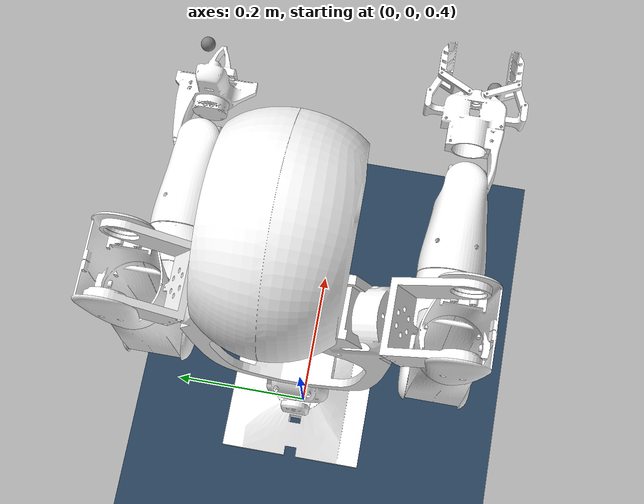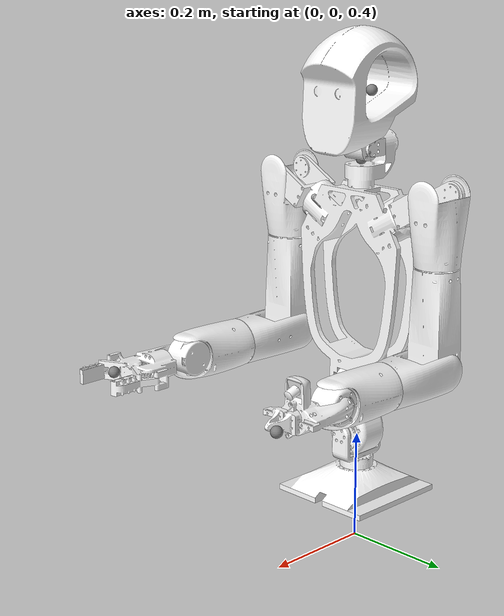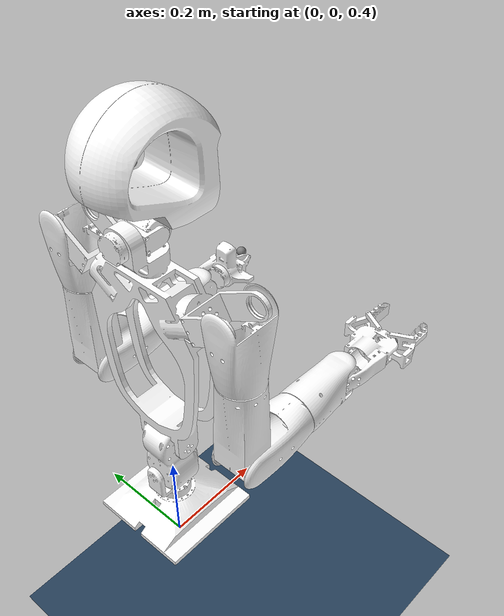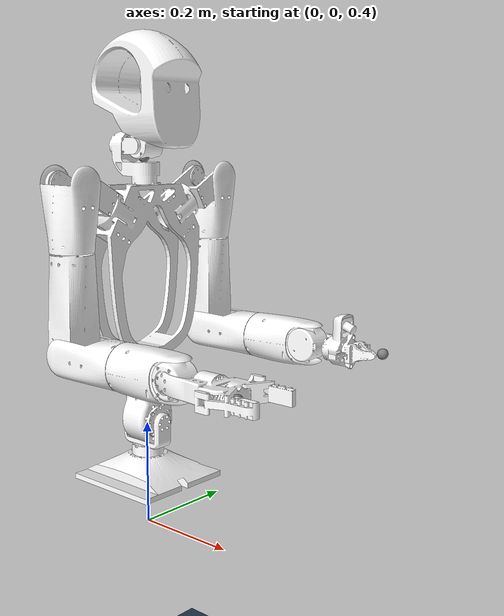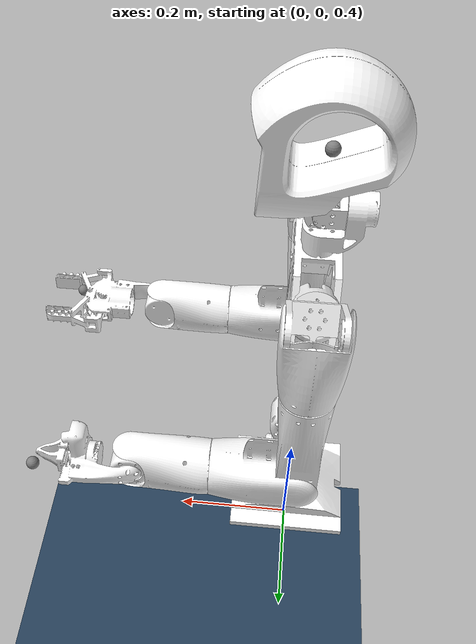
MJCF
<mujoco model="Semi_Taks_T1 scene clean">
  <include file="Semi_Taks_T1.xml"/>

  <statistic center="0 0 0.7" extent="1.5"/>

  <visual>
    <headlight diffuse="0.6 0.6 0.6" ambient="0.3 0.3 0.3" specular="0 0 0"/>
    <rgba haze="0.15 0.25 0.35 1"/>
    <global azimuth="-130" elevation="-20"/>
  </visual>

  <asset>
    <texture type="skybox" builtin="gradient" rgb1="0.3 0.5 0.7" rgb2="0 0 0" width="512" height="3072"/>
    <texture type="2d" name="groundplane" builtin="checker" mark="edge" rgb1="0.2 0.3 0.4" rgb2="0.1 0.2 0.3"
      markrgb="0.8 0.8 0.8" width="300" height="300"/>
    <material name="groundplane" texture="groundplane" texuniform="true" texrepeat="5 5" reflectance="0.2"/>
  </asset>

  <worldbody>
    <light pos="0 0 1.5" dir="0 0 -1" directional="true"/>
    <geom name="floor" size="0 0 0.05" type="plane" material="groundplane"/>
  </worldbody>

  <keyframe>
    <key name="home"
      qpos="
        0 0 0.5
        1 0 0 0
        0 0 0
        0 0.5 0 0.5 0 0 0
        0 -0.5 0 0.5 0 0 0
        0 0 0"/>
  </keyframe>
</mujoco>

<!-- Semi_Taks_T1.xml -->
<mujoco model="Semi_Taks_T1">
  <compiler angle="radian" meshdir="meshes" />

  <default>
    <default class="torso_motor">
      <joint damping="0.05" armature="0.01" frictionloss="0.2"/>
    </default>
    <default class="arm_motor">
      <joint damping="0.05" armature="0.01" frictionloss="0.2"/>
    </default>
    <default class="wrist_motor">
      <joint damping="0.05" armature="0.01" frictionloss="0.1"/>
    </default>
    <default class="neck_motor">
      <joint damping="0.02" armature="0.005" frictionloss="0.05"/>
    </default>
  </default>

  <asset>
    <mesh name="base_link" file="base_link.STL" />
    <mesh name="waist_yaw_link" file="waist_yaw_link.STL" />
    <mesh name="waist_roll_link" file="waist_roll_link.STL" />
    <mesh name="waist_pitch_link" file="waist_pitch_link.STL" />
    <mesh name="left_shoulder_pitch_link" file="left_shoulder_pitch_link.STL" />
    <mesh name="left_shoulder_roll_link" file="left_shoulder_roll_link.STL" />
    <mesh name="left_shoulder_yaw_link" file="left_shoulder_yaw_link.STL" />
    <mesh name="left_elbow_link" file="left_elbow_link.STL" />
    <mesh name="left_wrist_roll_link" file="left_wrist_roll_link.STL" />
    <mesh name="left_wrist_yaw_link" file="left_wrist_yaw_link.STL" />
    <mesh name="left_wrist_pitch_link" file="left_wrist_pitch_link.STL" />
    <mesh name="right_shoulder_pitch_link" file="right_shoulder_pitch_link.STL" />
    <mesh name="right_shoulder_roll_link" file="right_shoulder_roll_link.STL" />
    <mesh name="right_shoulder_yaw_link" file="right_shoulder_yaw_link.STL" />
    <mesh name="right_elbow_link" file="right_elbow_link.STL" />
    <mesh name="right_wrist_roll_link" file="right_wrist_roll_link.STL" />
    <mesh name="right_wrist_yaw_link" file="right_wrist_yaw_link.STL" />
    <mesh name="right_wrist_pitch_link" file="right_wrist_pitch_link.STL" />
    <mesh name="neck_yaw_link" file="neck_yaw_link.STL" />
    <mesh name="neck_roll_link" file="neck_roll_link.STL" />
    <mesh name="neck_pitch_link" file="neck_pitch_link.STL" />
  </asset>

  <worldbody>
    <body name="base_link" pos="0 0 0.5">
      <site name="imu" size="0.01" pos="0.0 0.0 0.0" />
      <inertial pos="0.0 0.0 0.0" mass="3.2"
        diaginertia="0.0111333 0.013026 0.0161433" />
      <joint name="floating_base_joint" type="free" limited="false" actuatorfrclimited="false" />
      <geom type="mesh" contype="0" conaffinity="0" group="1" density="0" rgba="1.0 1.0 1.0 1"
        mesh="base_link" />
      <geom type="mesh" rgba="1.0 1.0 1.0 1" mesh="base_link" contype="2" conaffinity="1" />

      <!-- Upper Body -->
      <body name="waist_yaw_link" pos="0.0 0.0 0.058">
        <inertial pos="0.000694 3.7e-05 0.023535" mass="0.79"
          diaginertia="0.00073075 0.00073075 0.0009875" />
        <joint name="waist_yaw_joint" pos="0 0 0" axis="0 0 1" range="-2.618 2.618"
          actuatorfrcrange="-97 97" class="torso_motor" />
        <geom type="mesh" contype="0" conaffinity="0" group="1" density="0" rgba="1.0 1.0 1.0 1"
          mesh="waist_yaw_link" />
        <geom type="mesh" rgba="1.0 1.0 1.0 1" mesh="waist_yaw_link" contype="2" conaffinity="1" />

        <body name="waist_roll_link" pos="0.03813 3.7e-05 0.050906">
          <inertial pos="-0.03647 0.001918 0.039525" mass="1.56"
            diaginertia="0.003848 0.003848 0.0026" />
          <joint name="waist_roll_joint" pos="0 0 0" axis="1 0 0" range="-0.52 0.52"
            actuatorfrcrange="-97 97" class="torso_motor" />
          <geom type="mesh" contype="0" conaffinity="0" group="1" density="0" rgba="1.0 1.0 1.0 1"
            mesh="waist_roll_link" />
          <geom type="mesh" rgba="1.0 1.0 1.0 1" mesh="waist_roll_link" contype="2" conaffinity="1" />

          <body name="torso_link" pos="-0.03813 -0.032925 0.079963">
            <inertial pos="-0.000232 0.028443 0.216034" mass="2.01"
              diaginertia="0.0272187 0.0242875 0.0104687" />
            <joint name="waist_pitch_joint" pos="0 0 0" axis="0 1 0" range="-0.52 0.52"
              actuatorfrcrange="-97 97" class="torso_motor" />
            <geom type="mesh" contype="0" conaffinity="0" group="1" density="0" rgba="1.0 1.0 1.0 1"
              mesh="waist_pitch_link" />
            <geom type="mesh" rgba="1.0 1.0 1.0 1" mesh="waist_pitch_link" contype="2" conaffinity="1" />

            <!-- Left Arm -->
            <body name="left_shoulder_pitch_link" pos="0.0 0.13582 0.33654"
              quat="0.9659258 0.2588190 0 0">
              <inertial pos="-0.003513 0.038593 0.000147" mass="0.24"
                diaginertia="0.00016 8.2e-05 0.000178" />
              <joint name="left_shoulder_pitch_joint" pos="0 0 0" axis="0 1 0"
                range="-2.0 2.0" actuatorfrcrange="-27 27" class="arm_motor" />
              <geom type="mesh" contype="0" conaffinity="0" group="1" density="0" rgba="1.0 1.0 1.0 1"
                mesh="left_shoulder_pitch_link" />
              <geom type="mesh" rgba="1.0 1.0 1.0 1" mesh="left_shoulder_pitch_link" />

              <body name="left_shoulder_roll_link" pos="0.03476 0.0835 0.000425"
                quat="0.9659258 -0.2588190 0 0">
                <inertial pos="-0.034364 0.004091 -0.054537" mass="0.92"
                  diaginertia="0.00187067 0.00187067 0.000736" />
                <joint name="left_shoulder_roll_joint" pos="0 0 0" axis="1 0 0"
                  range="-0.2 2.2515" actuatorfrcrange="-27 27" class="arm_motor" />
                <geom type="mesh" contype="0" conaffinity="0" group="1" density="0" rgba="1.0 1.0 1.0 1"
                  mesh="left_shoulder_roll_link" />
                <geom type="mesh" rgba="1.0 1.0 1.0 1" mesh="left_shoulder_roll_link" />

                <body name="left_shoulder_yaw_link" pos="-0.034375 0.0 -0.12">
                  <inertial pos="0.000365 -7.2e-05 -0.086229" mass="0.625"
                    diaginertia="0.0019375 0.0019375 0.0005" />
                  <joint name="left_shoulder_yaw_joint" pos="0 0 0" axis="0 0 1"
                    range="-2.58 2.58" actuatorfrcrange="-27 27" class="arm_motor" />
                  <geom type="mesh" contype="0" conaffinity="0" group="1" density="0" rgba="1.0 1.0 1.0 1"
                    mesh="left_shoulder_yaw_link" />
                  <geom type="mesh" rgba="1.0 1.0 1.0 1" mesh="left_shoulder_yaw_link" contype="8" conaffinity="1" />

                  <body name="left_elbow_link" pos="0.000364 0.029113 -0.18099">
                    <inertial pos="0.060258 -0.018902 -0.00551" mass="0.552"
                      diaginertia="0.0002484 0.0010258 0.0010258" />
                    <joint name="left_elbow_joint" pos="0 0 0" axis="0 1 0"
                      range="-0.7 1.57" actuatorfrcrange="-27 27" class="arm_motor" />
                    <geom type="mesh" contype="0" conaffinity="0" group="1" density="0" rgba="1.0 1.0 1.0 1"
                      mesh="left_elbow_link" />
                    <geom type="mesh" rgba="1.0 1.0 1.0 1" mesh="left_elbow_link" contype="8" conaffinity="1" />

                    <body name="left_wrist_roll_link" pos="0.13 -0.029125 0.0">
                      <inertial pos="0.059349 0.0 0.000843" mass="0.508"
                        diaginertia="0.00015875 0.000794808 0.000794808" />
                      <joint name="left_wrist_roll_joint" pos="0 0 0" axis="1 0 0"
                        range="-2.67 2.67" actuatorfrcrange="-7 7" class="wrist_motor" />
                      <geom type="mesh" contype="0" conaffinity="0" group="1" density="0" rgba="1.0 1.0 1.0 1"
                        mesh="left_wrist_roll_link" />
                      <geom type="mesh" rgba="1.0 1.0 1.0 1" mesh="left_wrist_roll_link" contype="8" conaffinity="1" />

                      <body name="left_wrist_yaw_link" pos="0.121 0.0 -0.0333">
                        <inertial pos="0.0 0.001805 0.034219" mass="0.37"
                          diaginertia="0.000234333 0.000234333 0.0001665" />
                        <joint name="left_wrist_yaw_joint" pos="0 0 0" axis="0 0 1"
                          range="-0.9 0.9" actuatorfrcrange="-7 7" class="wrist_motor" />
                        <geom type="mesh" contype="0" conaffinity="0" group="1" density="0" rgba="1.0 1.0 1.0 1"
                          mesh="left_wrist_yaw_link" />
                        <geom type="mesh" rgba="1.0 1.0 1.0 1" mesh="left_wrist_yaw_link" contype="8" conaffinity="1" />

                        <body name="left_wrist_pitch_link" pos="0.0 0.0225 0.0333">
                          <inertial pos="0.0920 -0.0265 0.0015" mass="0.308"
                            diaginertia="0.000256667 0.00133467 0.00140653"/>
                          <joint name="left_wrist_pitch_joint" pos="0 0 0" axis="0 1 0"
                            range="-0.9 0.9" actuatorfrcrange="-7 7" class="wrist_motor" />
                          <geom type="mesh" contype="0" conaffinity="0" group="1" density="0" rgba="1.0 1.0 1.0 1"
                            mesh="left_wrist_pitch_link" />
                          <geom type="mesh" rgba="1.0 1.0 1.0 1" mesh="left_wrist_pitch_link" contype="8" conaffinity="1" />
                          <site name="left_hand" size="0.01" pos="0.15 0 0" />
                        </body>
                      </body>
                    </body>
                  </body>
                </body>
              </body>
            </body>

            <!-- Right Arm -->
            <body name="right_shoulder_pitch_link" pos="0.0 -0.069974 0.33654"
              quat="0.9659258 -0.2588190 0 0">
              <inertial pos="-0.003513 -0.038593 0.000147" mass="0.24"
                diaginertia="0.00016 8.2e-05 0.000178" />
              <joint name="right_shoulder_pitch_joint" pos="0 0 0" axis="0 1 0"
                range="-2.0 2.0" actuatorfrcrange="-27 27" class="arm_motor" />
              <geom type="mesh" contype="0" conaffinity="0" group="1" density="0" rgba="1.0 1.0 1.0 1"
                mesh="right_shoulder_pitch_link" />
              <geom type="mesh" rgba="1.0 1.0 1.0 1" mesh="right_shoulder_pitch_link" />

              <body name="right_shoulder_roll_link" pos="0.02776 -0.0835 0.000425"
                quat="0.9659258 0.2588190 0 0">
                <inertial pos="-0.027363 -0.004095 -0.054537" mass="0.92"
                  diaginertia="0.00187067 0.00187067 0.000736" />
                <joint name="right_shoulder_roll_joint" pos="0 0 0" axis="1 0 0"
                  range="-2.2515 0.2" actuatorfrcrange="-27 27" class="arm_motor" />
                <geom type="mesh" contype="0" conaffinity="0" group="1" density="0" rgba="1.0 1.0 1.0 1"
                  mesh="right_shoulder_roll_link" />
                <geom type="mesh" rgba="1.0 1.0 1.0 1" mesh="right_shoulder_roll_link" />

                <body name="right_shoulder_yaw_link" pos="-0.027375 0.0 -0.12">
                  <inertial pos="0.000364 6.6e-05 -0.08623" mass="0.625"
                    diaginertia="0.0019375 0.0019375 0.0005" />
                  <joint name="right_shoulder_yaw_joint" pos="0 0 0" axis="0 0 1"
                    range="-2.58 2.58" actuatorfrcrange="-27 27" class="arm_motor" />
                  <geom type="mesh" contype="0" conaffinity="0" group="1" density="0" rgba="1.0 1.0 1.0 1"
                    mesh="right_shoulder_yaw_link" />
                  <geom type="mesh" rgba="1.0 1.0 1.0 1" mesh="right_shoulder_yaw_link" contype="16" conaffinity="1" />

                  <body name="right_elbow_link" pos="0.000364 0.027375 -0.18099">
                    <inertial pos="0.060603 -0.027325 -0.005367" mass="0.552"
                      diaginertia="0.0002484 0.0010258 0.0010258" />
                    <joint name="right_elbow_joint" pos="0 0 0" axis="0 1 0"
                      range="-0.7 1.57" actuatorfrcrange="-27 27" class="arm_motor" />
                    <geom type="mesh" contype="0" conaffinity="0" group="1" density="0" rgba="1.0 1.0 1.0 1"
                      mesh="right_elbow_link" />
                    <geom type="mesh" rgba="1.0 1.0 1.0 1" mesh="right_elbow_link" contype="16" conaffinity="1" />

                    <body name="right_wrist_roll_link" pos="0.13 -0.027375 0.0">
                      <inertial pos="0.059331 0.0 0.000847" mass="0.508"
                        diaginertia="0.00015875 0.000794808 0.000794808" />
                      <joint name="right_wrist_roll_joint" pos="0 0 0" axis="1 0 0"
                        range="-2.67 2.67" actuatorfrcrange="-7 7" class="wrist_motor" />
                      <geom type="mesh" contype="0" conaffinity="0" group="1" density="0" rgba="1.0 1.0 1.0 1"
                        mesh="right_wrist_roll_link" />
                      <geom type="mesh" rgba="1.0 1.0 1.0 1" mesh="right_wrist_roll_link" contype="16" conaffinity="1" />

                      <body name="right_wrist_yaw_link" pos="0.121 0.0 -0.0333">
                        <inertial pos="0.0 -0.001803 0.034219" mass="0.37"
                          diaginertia="0.000234333 0.000234333 0.0001665" />
                        <joint name="right_wrist_yaw_joint" pos="0 0 0" axis="0 0 1"
                          range="-0.9 0.9" actuatorfrcrange="-7 7" class="wrist_motor" />
                        <geom type="mesh" contype="0" conaffinity="0" group="1" density="0" rgba="1.0 1.0 1.0 1"
                          mesh="right_wrist_yaw_link" />
                        <geom type="mesh" rgba="1.0 1.0 1.0 1" mesh="right_wrist_yaw_link" contype="16" conaffinity="1" />

                        <body name="right_wrist_pitch_link" pos="0.0 -0.0225 0.0333">
                          <inertial pos="0.0920 0.0265 0.0015" mass="0.308"
                            diaginertia="0.000256667 0.00133467 0.00140653"/>
                          <joint name="right_wrist_pitch_joint" pos="0 0 0" axis="0 1 0"
                            range="-0.9 0.9" actuatorfrcrange="-7 7" class="wrist_motor" />
                          <geom type="mesh" contype="0" conaffinity="0" group="1" density="0" rgba="1.0 1.0 1.0 1"
                            mesh="right_wrist_pitch_link" />
                          <geom type="mesh" rgba="1.0 1.0 1.0 1" mesh="right_wrist_pitch_link" contype="16" conaffinity="1" />
                          <site name="right_hand" size="0.01" pos="0.15 0 0" />
                        </body>
                      </body>
                    </body>
                  </body>
                </body>
              </body>
            </body>

            <!-- Neck -->
            <body name="neck_yaw_link" pos="0.0 0.032906 0.37165" quat="1 3.2e-05 0 0">
              <inertial pos="-0.026005 0.0 0.044508" mass="0.4"
                diaginertia="0.000373333 0.000373333 0.00032" />
              <joint name="neck_yaw_joint" pos="0 0 0" axis="0 0 1" range="-1.57 1.57"
                actuatorfrcrange="-3 3" class="neck_motor" />
              <geom type="mesh" contype="0" conaffinity="0" group="1" density="0" rgba="1.0 1.0 1.0 1"
                mesh="neck_yaw_link" />
              <geom type="mesh" rgba="1.0 1.0 1.0 1" mesh="neck_yaw_link" contype="4" conaffinity="1" />
              <site name="neck_yaw" size="0.01" pos="0 0 0.05" />

              <body name="neck_roll_link" pos="-0.0719 0.0 0.0708">
                <inertial pos="0.05706 -0.000635 0.0" mass="0.026"
                  diaginertia="4.16e-06 4.16e-06 4.16e-06" />
                <joint name="neck_roll_joint" pos="0 0 0" axis="1 0 0" range="-0.873 0.873"
                  actuatorfrcrange="-3 3" class="neck_motor" />
                <geom type="mesh" contype="0" conaffinity="0" group="1" density="0" rgba="1.0 1.0 1.0 1"
                  mesh="neck_roll_link" />
                <geom type="mesh" rgba="1.0 1.0 1.0 1" mesh="neck_roll_link" contype="4" conaffinity="1" />

                <body name="neck_pitch_link" pos="0.0719 0.02095 0.0">
                  <inertial pos="0.009314 -0.020599 0.085269" mass="0.6"
                    diaginertia="0.001944 0.001944 0.001944" />
                  <joint name="neck_pitch_joint" pos="0 0 0" axis="0 1 0" range="-0.873 0.873"
                    actuatorfrcrange="-3 3" class="neck_motor" />
                  <geom type="mesh" contype="0" conaffinity="0" group="1" density="0" rgba="1.0 1.0 1.0 1"
                    mesh="neck_pitch_link" />
                  <geom type="mesh" rgba="1.0 1.0 1.0 1" mesh="neck_pitch_link" contype="4" conaffinity="1" />
                  <site name="neck_pitch" size="0.01" pos="0 0 0.1" />
                </body>
              </body>
            </body>
          </body>
        </body>
      </body>
    </body>
  </worldbody>

  <!-- Actuators (17 DOF) -->
  <actuator>
    <!-- Waist -->
    <motor name="waist_yaw" joint="waist_yaw_joint" ctrlrange="-97 97" />
    <motor name="waist_roll" joint="waist_roll_joint" ctrlrange="-97 97" />
    <motor name="waist_pitch" joint="waist_pitch_joint" ctrlrange="-97 97" />
    <!-- Left Arm -->
    <motor name="left_shoulder_pitch" joint="left_shoulder_pitch_joint" ctrlrange="-27 27" />
    <motor name="left_shoulder_roll" joint="left_shoulder_roll_joint" ctrlrange="-27 27" />
    <motor name="left_shoulder_yaw" joint="left_shoulder_yaw_joint" ctrlrange="-27 27" />
    <motor name="left_elbow" joint="left_elbow_joint" ctrlrange="-27 27" />
    <motor name="left_wrist_roll" joint="left_wrist_roll_joint" ctrlrange="-7 7" />
    <motor name="left_wrist_yaw" joint="left_wrist_yaw_joint" ctrlrange="-7 7" />
    <motor name="left_wrist_pitch" joint="left_wrist_pitch_joint" ctrlrange="-7 7" />
    <!-- Right Arm -->
    <motor name="right_shoulder_pitch" joint="right_shoulder_pitch_joint" ctrlrange="-27 27" />
    <motor name="right_shoulder_roll" joint="right_shoulder_roll_joint" ctrlrange="-27 27" />
    <motor name="right_shoulder_yaw" joint="right_shoulder_yaw_joint" ctrlrange="-27 27" />
    <motor name="right_elbow" joint="right_elbow_joint" ctrlrange="-27 27" />
    <motor name="right_wrist_roll" joint="right_wrist_roll_joint" ctrlrange="-7 7" />
    <motor name="right_wrist_yaw" joint="right_wrist_yaw_joint" ctrlrange="-7 7" />
    <motor name="right_wrist_pitch" joint="right_wrist_pitch_joint" ctrlrange="-7 7" />
    <!-- Neck -->
    <motor name="neck_yaw" joint="neck_yaw_joint" ctrlrange="-3 3" />
    <motor name="neck_roll" joint="neck_roll_joint" ctrlrange="-3 3" />
    <motor name="neck_pitch" joint="neck_pitch_joint" ctrlrange="-3 3" />
  </actuator>

  <!-- Sensors -->
  <sensor>
    <!-- Joint positions -->
    <jointpos name="waist_yaw_pos" joint="waist_yaw_joint" />
    <jointpos name="waist_roll_pos" joint="waist_roll_joint" />
    <jointpos name="waist_pitch_pos" joint="waist_pitch_joint" />
    <jointpos name="left_shoulder_pitch_pos" joint="left_shoulder_pitch_joint" />
    <jointpos name="left_shoulder_roll_pos" joint="left_shoulder_roll_joint" />
    <jointpos name="left_shoulder_yaw_pos" joint="left_shoulder_yaw_joint" />
    <jointpos name="left_elbow_pos" joint="left_elbow_joint" />
    <jointpos name="left_wrist_roll_pos" joint="left_wrist_roll_joint" />
    <jointpos name="left_wrist_yaw_pos" joint="left_wrist_yaw_joint" />
    <jointpos name="left_wrist_pitch_pos" joint="left_wrist_pitch_joint" />
    <jointpos name="right_shoulder_pitch_pos" joint="right_shoulder_pitch_joint" />
    <jointpos name="right_shoulder_roll_pos" joint="right_shoulder_roll_joint" />
    <jointpos name="right_shoulder_yaw_pos" joint="right_shoulder_yaw_joint" />
    <jointpos name="right_elbow_pos" joint="right_elbow_joint" />
    <jointpos name="right_wrist_roll_pos" joint="right_wrist_roll_joint" />
    <jointpos name="right_wrist_yaw_pos" joint="right_wrist_yaw_joint" />
    <jointpos name="right_wrist_pitch_pos" joint="right_wrist_pitch_joint" />
    <jointpos name="neck_yaw_pos" joint="neck_yaw_joint" />
    <jointpos name="neck_roll_pos" joint="neck_roll_joint" />
    <jointpos name="neck_pitch_pos" joint="neck_pitch_joint" />

    <!-- Joint velocities -->
    <jointvel name="waist_yaw_vel" joint="waist_yaw_joint" />
    <jointvel name="waist_roll_vel" joint="waist_roll_joint" />
    <jointvel name="waist_pitch_vel" joint="waist_pitch_joint" />
    <jointvel name="left_shoulder_pitch_vel" joint="left_shoulder_pitch_joint" />
    <jointvel name="left_shoulder_roll_vel" joint="left_shoulder_roll_joint" />
    <jointvel name="left_shoulder_yaw_vel" joint="left_shoulder_yaw_joint" />
    <jointvel name="left_elbow_vel" joint="left_elbow_joint" />
    <jointvel name="left_wrist_roll_vel" joint="left_wrist_roll_joint" />
    <jointvel name="left_wrist_yaw_vel" joint="left_wrist_yaw_joint" />
    <jointvel name="left_wrist_pitch_vel" joint="left_wrist_pitch_joint" />
    <jointvel name="right_shoulder_pitch_vel" joint="right_shoulder_pitch_joint" />
    <jointvel name="right_shoulder_roll_vel" joint="right_shoulder_roll_joint" />
    <jointvel name="right_shoulder_yaw_vel" joint="right_shoulder_yaw_joint" />
    <jointvel name="right_elbow_vel" joint="right_elbow_joint" />
    <jointvel name="right_wrist_roll_vel" joint="right_wrist_roll_joint" />
    <jointvel name="right_wrist_yaw_vel" joint="right_wrist_yaw_joint" />
    <jointvel name="right_wrist_pitch_vel" joint="right_wrist_pitch_joint" />
    <jointvel name="neck_yaw_vel" joint="neck_yaw_joint" />
    <jointvel name="neck_roll_vel" joint="neck_roll_joint" />
    <jointvel name="neck_pitch_vel" joint="neck_pitch_joint" />

    <!-- Joint actuator forces -->
    <jointactuatorfrc name="waist_yaw_torque" joint="waist_yaw_joint" />
    <jointactuatorfrc name="waist_roll_torque" joint="waist_roll_joint" />
    <jointactuatorfrc name="waist_pitch_torque" joint="waist_pitch_joint" />
    <jointactuatorfrc name="left_shoulder_pitch_torque" joint="left_shoulder_pitch_joint" />
    <jointactuatorfrc name="left_shoulder_roll_torque" joint="left_shoulder_roll_joint" />
    <jointactuatorfrc name="left_shoulder_yaw_torque" joint="left_shoulder_yaw_joint" />
    <jointactuatorfrc name="left_elbow_torque" joint="left_elbow_joint" />
    <jointactuatorfrc name="left_wrist_roll_torque" joint="left_wrist_roll_joint" />
    <jointactuatorfrc name="left_wrist_yaw_torque" joint="left_wrist_yaw_joint" />
    <jointactuatorfrc name="left_wrist_pitch_torque" joint="left_wrist_pitch_joint" />
    <jointactuatorfrc name="right_shoulder_pitch_torque" joint="right_shoulder_pitch_joint" />
    <jointactuatorfrc name="right_shoulder_roll_torque" joint="right_shoulder_roll_joint" />
    <jointactuatorfrc name="right_shoulder_yaw_torque" joint="right_shoulder_yaw_joint" />
    <jointactuatorfrc name="right_elbow_torque" joint="right_elbow_joint" />
    <jointactuatorfrc name="right_wrist_roll_torque" joint="right_wrist_roll_joint" />
    <jointactuatorfrc name="right_wrist_yaw_torque" joint="right_wrist_yaw_joint" />
    <jointactuatorfrc name="right_wrist_pitch_torque" joint="right_wrist_pitch_joint" />
    <jointactuatorfrc name="neck_yaw_torque" joint="neck_yaw_joint" />
    <jointactuatorfrc name="neck_roll_torque" joint="neck_roll_joint" />
    <jointactuatorfrc name="neck_pitch_torque" joint="neck_pitch_joint" />

    <!-- IMU sensors -->
    <framequat name="imu_quat" objtype="site" objname="imu" />
    <gyro name="imu_gyro" site="imu" />
    <accelerometer name="imu_acc" site="imu" />

    <framepos name="frame_pos" objtype="site" objname="imu" />
    <framelinvel name="frame_vel" objtype="site" objname="imu" />
  </sensor>

</mujoco>
